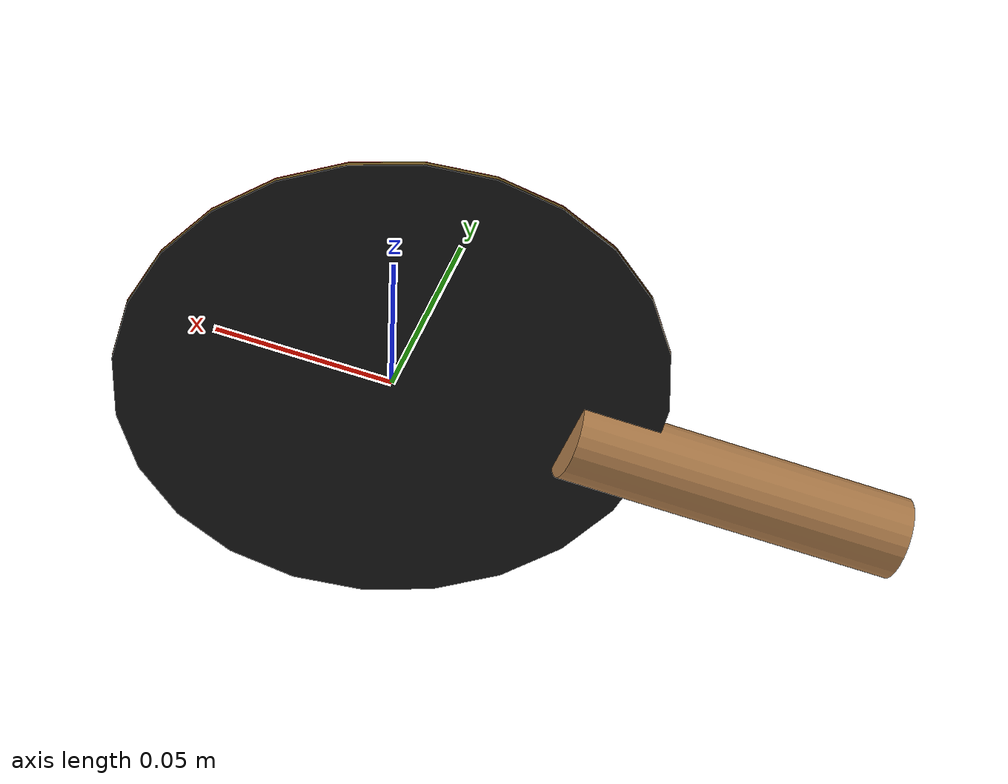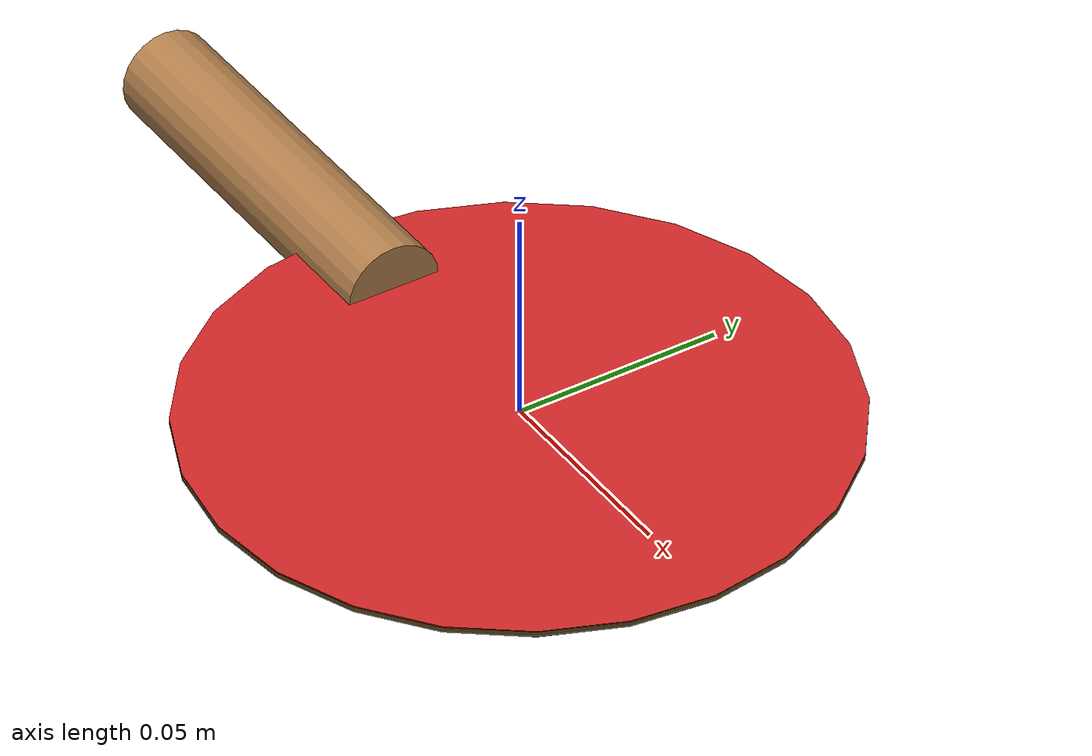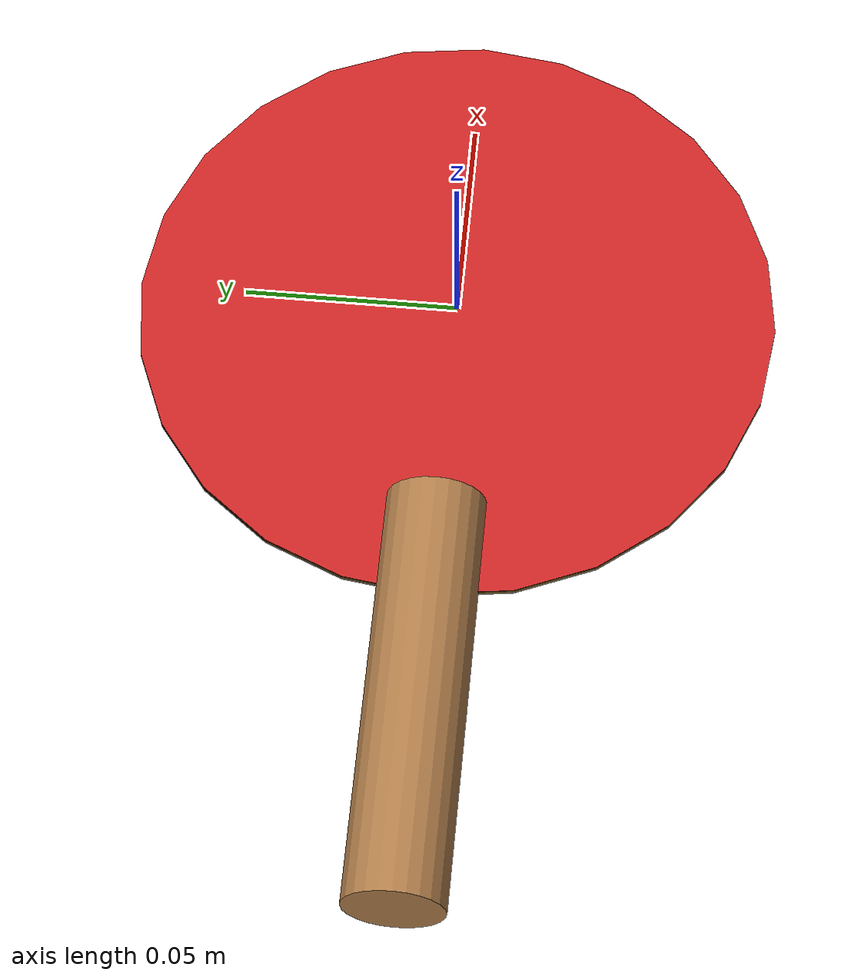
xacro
<?xml version="1.0"?>
<robot name="racket" xmlns:xacro="http://ros.org/wiki/xacro">
    <material name="racket_colour">
        <color rgba="0.4 0.3 0.1 1"/>
    </material>

    <gazebo reference="tt_racket_link">
        <material>Gazebo/Wood</material>
    </gazebo>

    <gazebo reference="tt_racket_sponge_1_link">
        <material>Gazebo/Red</material>
    </gazebo>

    <gazebo reference="tt_racket_sponge_2_link">
        <material>Gazebo/Black</material>
    </gazebo>

    <gazebo reference="tt_racket_handle_link">
        <material>Gazebo/Wood</material>
    </gazebo>

    <link name="tt_racket_center_link"/>

    <link name="tt_racket_link">
        <inertial>
            <mass value="0.08"/>
            <origin xyz="0 0 0" rpy="0 0 0"/>
            <inertia  ixx="0.00011250959999999999" ixy="0" ixz="0" iyy="0.00011250959999999999" iyz="0" izz="0.000225" />
        </inertial>
        <visual>
            <origin xyz="0 0 0" rpy="0 0 0" />
            <geometry>
                <cylinder radius="0.075" length="0.0012"/>
            </geometry>
            <material name="racket_colour"/>
        </visual>
        <collision>
            <origin xyz="0 0 0" rpy="0 0 0" />
            <geometry>
                <cylinder radius="0.075" length="0.0015"/>
            </geometry>
        </collision>
    </link>

    <joint name="tt_racket_joint" type="fixed">
        <parent link="tt_racket_center_link"/>
        <child link="tt_racket_link"/>
        <origin xyz="0 0 0" rpy="0 0 0" />
    </joint>

    <link name="tt_racket_sponge_1_link">
        <inertial>
            <mass value="0.01"/>
            <origin xyz="0 0 0" rpy="0 0 0"/>
            <inertia  ixx="1.4062575000000001e-05" ixy="0" ixz="0" iyy="1.4062575000000001e-05" iyz="0" izz="2.8125e-05" />
        </inertial>
        <visual>
            <origin xyz="0 0 0" rpy="0 0 0" />
            <geometry>
                <cylinder radius="0.075" length="0.0003"/>
            </geometry>
        </visual>
    </link>

    <joint name="tt_racket_sponge_1_joint" type="fixed">
        <parent link="tt_racket_link"/>
        <child link="tt_racket_sponge_1_link"/>
        <origin xyz="0 0 0.0006" rpy="0 0 0" />
    </joint>

    <link name="tt_racket_sponge_2_link">
        <inertial>
            <mass value="0.01"/>
            <origin xyz="0 0 0" rpy="0 0 0"/>
            <inertia  ixx="1.4062575000000001e-05" ixy="0" ixz="0" iyy="1.4062575000000001e-05" iyz="0" izz="2.8125e-05" />
        </inertial>
        <visual>
            <origin xyz="0 0 0" rpy="0 0 0" />
            <geometry>
                <cylinder radius="0.075" length="0.0003"/>
            </geometry>
        </visual>
    </link>

    <joint name="tt_racket_sponge_2_joint" type="fixed">
        <parent link="tt_racket_link"/>
        <child link="tt_racket_sponge_2_link"/>
        <origin xyz="0 0 -0.0006" rpy="0 0 0" />
    </joint>

    <link name="tt_racket_handle_link">
        <inertial>
            <mass value="0.05"/>
            <origin xyz="0 0 0" rpy="0 0 0"/>
            <inertia  ixx="4.166979166666667e-05" ixy="0" ixz="0" iyy="4.166979166666667e-05" iyz="0" izz="3.30625e-06" />
        </inertial>
        <visual>
            <origin xyz="0 0 0" rpy="0 0 0" />
            <geometry>
                <cylinder radius="0.0115" length="0.098"/>
            </geometry>
        </visual>
        <collision>
            <origin xyz="0 0 0" rpy="0 0 0" />
            <geometry>
                <box size="0.0115 0.0115 0.098"/>
            </geometry>
        </collision>
    </link>

    <joint name="tt_racket_handle_joint" type="fixed">
        <parent link="tt_racket_link"/>
        <child link="tt_racket_handle_link"/>
        <origin xyz="-0.1 0 0" rpy="0 1.57 0" />
    </joint>

    <gazebo reference="tt_racket_handle_link">
        <mu1>1</mu1>
        <mu2>1</mu2>
        <kd>100</kd>
        <kp>500000000000</kp>
        <minDepth>0</minDepth>
        <maxVel>666</maxVel>
    </gazebo>

    <gazebo>
        <plugin name="racket_position_plugin" filename="libgazebo_ros_p3d.so">
            <ros>
                <namespace>p3d</namespace>
                <remapping>odom:=racket_odom</remapping>
            </ros>
            <frame_name>map</frame_name>
            <body_name>tt_racket_center_link</body_name>
            <update_rate>1.0</update_rate>
            <gaussian_noise>0.0</gaussian_noise>
        </plugin>
    </gazebo>

    <gazebo>
        <static>false</static>
    </gazebo>

</robot>
